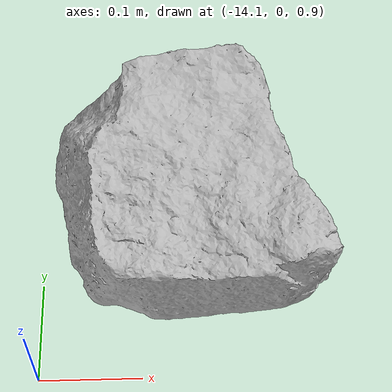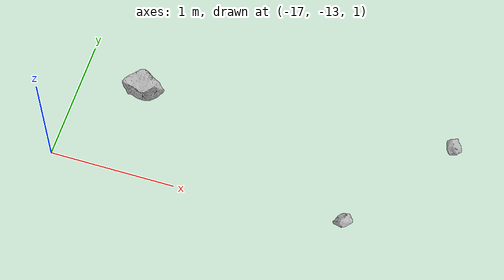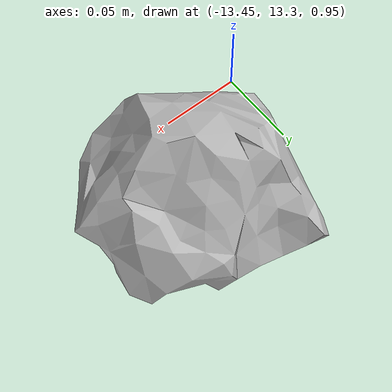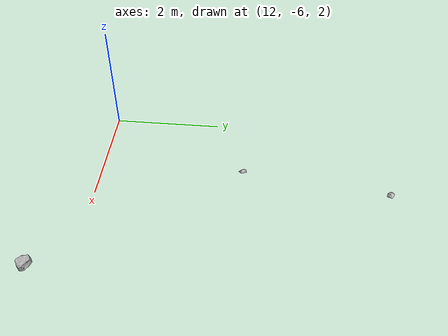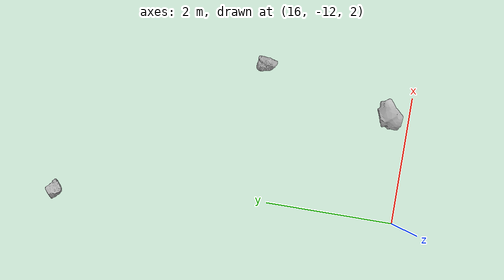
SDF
<sdf version="1.7">
 <world name="marsyard">
  <gravity>0 0 -9.81</gravity>
  <physics name="dart_physics" type="ignored">
   <max_step_size>0.003</max_step_size>
   <real_time_update_rate>333</real_time_update_rate>
   <real_time_factor>1.0</real_time_factor>
  </physics>
  <plugin filename="ignition-gazebo-physics-system" name="ignition::gazebo::systems::Physics"/>
  <plugin filename="ignition-gazebo-user-commands-system" name="ignition::gazebo::systems::UserCommands"/>
  <plugin filename="ignition-gazebo-scene-broadcaster-system" name="ignition::gazebo::systems::SceneBroadcaster"/>
  <plugin filename="ignition-gazebo-contact-system" name="ignition::gazebo::systems::Contact"/>
  <scene>
   <ambient>0.95 0.95 0.95 1</ambient>
   <background>0.70 0.70 0.70 1</background>
   <shadows>false</shadows>
  </scene>
  <light type="directional" name="sun">
   <cast_shadows>false</cast_shadows>
   <pose>0 0 30 0 0 0</pose>
   <diffuse>1 1 1 1</diffuse>
   <specular>0.15 0.15 0.15 1</specular>
   <direction>-0.35 0.1 -0.93</direction>
  </light>
  <model name="Rock_2">
   <static>true</static>
   <pose>13.1761 -0.6225 1.5611 0.0000 0.0000 2.4926</pose>
   <link name="link">
    <visual name="visual">
     <geometry><mesh><uri>package://rock_generator/rocks_ws/rock_5/meshes/rock_5.stl</uri></mesh></geometry>
    </visual>
    <collision name="collision">
     <geometry><mesh><uri>package://rock_generator/rocks_ws/rock_5/meshes/rock_5.stl</uri></mesh></geometry>
    </collision>
   </link>
  </model>
  <model name="Rock_3">
   <static>true</static>
   <pose>-16.4498 -12.4044 1.2534 0.0000 0.0000 1.7594</pose>
   <link name="link">
    <visual name="visual">
     <geometry><mesh><uri>package://rock_generator/rocks_ws/rock_1/meshes/rock_1.stl</uri></mesh></geometry>
    </visual>
    <collision name="collision">
     <geometry><mesh><uri>package://rock_generator/rocks_ws/rock_1/meshes/rock_1.stl</uri></mesh></geometry>
    </collision>
   </link>
  </model>
  <model name="Rock_5">
   <static>true</static>
   <pose>12.9486 -3.4217 1.7304 0.0000 0.0000 -1.0261</pose>
   <link name="link">
    <visual name="visual">
     <geometry><mesh><uri>package://rock_generator/rocks_ws/rock_5/meshes/rock_5.stl</uri></mesh></geometry>
    </visual>
    <collision name="collision">
     <geometry><mesh><uri>package://rock_generator/rocks_ws/rock_5/meshes/rock_5.stl</uri></mesh></geometry>
    </collision>
   </link>
  </model>
  <model name="Rock_6">
   <static>true</static>
   <pose>-14.0059 -12.2042 1.3212 0.0000 0.0000 1.9512</pose>
   <link name="link">
    <visual name="visual">
     <geometry><mesh><uri>package://rock_generator/rocks_ws/rock_5/meshes/rock_5.stl</uri></mesh></geometry>
    </visual>
    <collision name="collision">
     <geometry><mesh><uri>package://rock_generator/rocks_ws/rock_5/meshes/rock_5.stl</uri></mesh></geometry>
    </collision>
   </link>
  </model>
  <model name="Rock_7">
   <static>true</static>
   <pose>-14.6397 -13.0688 1.3652 0.0000 0.0000 -2.2132</pose>
   <link name="link">
    <visual name="visual">
     <geometry><mesh><uri>package://rock_generator/rocks_ws/rock_5/meshes/rock_5.stl</uri></mesh></geometry>
    </visual>
    <collision name="collision">
     <geometry><mesh><uri>package://rock_generator/rocks_ws/rock_5/meshes/rock_5.stl</uri></mesh></geometry>
    </collision>
   </link>
  </model>
  <model name="Rock_8">
   <static>true</static>
   <pose>-7.2798 -3.4915 1.1227 0.0000 0.0000 1.6457</pose>
   <link name="link">
    <visual name="visual">
     <geometry><mesh><uri>package://rock_generator/rocks_ws/rock_5/meshes/rock_5.stl</uri></mesh></geometry>
    </visual>
   </link>
  </model>
  <model name="Rock_9">
   <static>true</static>
   <pose>-5.2494 11.7048 0.8037 0.0000 0.0000 2.9406</pose>
   <link name="link">
    <visual name="visual">
     <geometry><mesh><uri>package://rock_generator/rocks_ws/rock_9/meshes/rock_9.stl</uri></mesh></geometry>
    </visual>
    <collision name="collision">
     <geometry><mesh><uri>package://rock_generator/rocks_ws/rock_9/meshes/rock_9.stl</uri></mesh></geometry>
    </collision>
   </link>
  </model>
  <model name="Rock_10">
   <static>true</static>
   <pose>6.0894 10.8801 1.2898 0.0000 0.0000 0.8018</pose>
   <link name="link">
    <visual name="visual">
     <geometry><mesh><uri>package://rock_generator/rocks_ws/rock_5/meshes/rock_5.stl</uri></mesh></geometry>
    </visual>
   </link>
  </model>
  <model name="Rock_12">
   <static>true</static>
   <pose>-17.2792 3.0808 1.2270 0.0000 0.0000 -0.9862</pose>
   <link name="link">
    <visual name="visual">
     <geometry><mesh><uri>package://rock_generator/rocks_ws/rock_8/meshes/rock_8.stl</uri></mesh></geometry>
    </visual>
    <collision name="collision">
     <geometry><mesh><uri>package://rock_generator/rocks_ws/rock_8/meshes/rock_8.stl</uri></mesh></geometry>
    </collision>
   </link>
  </model>
  <model name="Rock_13">
   <static>true</static>
   <pose>15.6806 -6.6672 2.0609 0.0000 0.0000 -1.6786</pose>
   <link name="link">
    <visual name="visual">
     <geometry><mesh><uri>package://rock_generator/rocks_ws/rock_1/meshes/rock_1.stl</uri></mesh></geometry>
    </visual>
    <collision name="collision">
     <geometry><mesh><uri>package://rock_generator/rocks_ws/rock_1/meshes/rock_1.stl</uri></mesh></geometry>
    </collision>
   </link>
  </model>
  <model name="Rock_14">
   <static>true</static>
   <pose>-13.3703 13.3603 0.9858 0.0000 0.0000 2.6716</pose>
   <link name="link">
    <visual name="visual">
     <geometry><mesh><uri>package://rock_generator/rocks_ws/rock_5/meshes/rock_5.stl</uri></mesh></geometry>
    </visual>
   </link>
  </model>
  <model name="Rock_16">
   <static>true</static>
   <pose>18.2330 -9.6428 2.2206 0.0000 0.0000 1.4790</pose>
   <link name="link">
    <visual name="visual">
     <geometry><mesh><uri>package://rock_generator/rocks_ws/rock_3/meshes/rock_3.stl</uri></mesh></geometry>
    </visual>
    <collision name="collision">
     <geometry><mesh><uri>package://rock_generator/rocks_ws/rock_3/meshes/rock_3.stl</uri></mesh></geometry>
    </collision>
   </link>
  </model>
  <model name="Rock_17">
   <static>true</static>
   <pose>-13.9363 0.1448 0.9414 0.0000 0.0000 -2.2735</pose>
   <link name="link">
    <visual name="visual">
     <geometry><mesh><uri>package://rock_generator/rocks_ws/rock_1/meshes/rock_1.stl</uri></mesh></geometry>
    </visual>
    <collision name="collision">
     <geometry><mesh><uri>package://rock_generator/rocks_ws/rock_1/meshes/rock_1.stl</uri></mesh></geometry>
    </collision>
   </link>
  </model>
  <model name="Rock_20">
   <static>true</static>
   <pose>12.7958 3.4561 1.2203 0.0000 0.0000 1.7084</pose>
   <link name="link">
    <visual name="visual">
     <geometry><mesh><uri>package://rock_generator/rocks_ws/rock_8/meshes/rock_8.stl</uri></mesh></geometry>
    </visual>
   </link>
  </model>
  <model name="Rock_21">
   <static>true</static>
   <pose>-6.0424 7.4223 1.2823 0.0000 0.0000 0.5567</pose>
   <link name="link">
    <visual name="visual">
     <geometry><mesh><uri>package://rock_generator/rocks_ws/rock_9/meshes/rock_9.stl</uri></mesh></geometry>
    </visual>
    <collision name="collision">
     <geometry><mesh><uri>package://rock_generator/rocks_ws/rock_9/meshes/rock_9.stl</uri></mesh></geometry>
    </collision>
   </link>
  </model>
  <model name="Rock_22">
   <static>true</static>
   <pose>17.6648 -11.6466 2.2206 0.0000 0.0000 -2.7053</pose>
   <link name="link">
    <visual name="visual">
     <geometry><mesh><uri>package://rock_generator/rocks_ws/rock_8/meshes/rock_8.stl</uri></mesh></geometry>
    </visual>
    <collision name="collision">
     <geometry><mesh><uri>package://rock_generator/rocks_ws/rock_8/meshes/rock_8.stl</uri></mesh></geometry>
    </collision>
   </link>
  </model>
  <model name="Rock_24">
   <static>true</static>
   <pose>5.6054 -2.0673 1.6528 0.0000 0.0000 -1.9738</pose>
   <link name="link">
    <visual name="visual">
     <geometry><mesh><uri>package://rock_generator/rocks_ws/rock_1/meshes/rock_1.stl</uri></mesh></geometry>
    </visual>
   </link>
  </model>
 </world>
</sdf>
